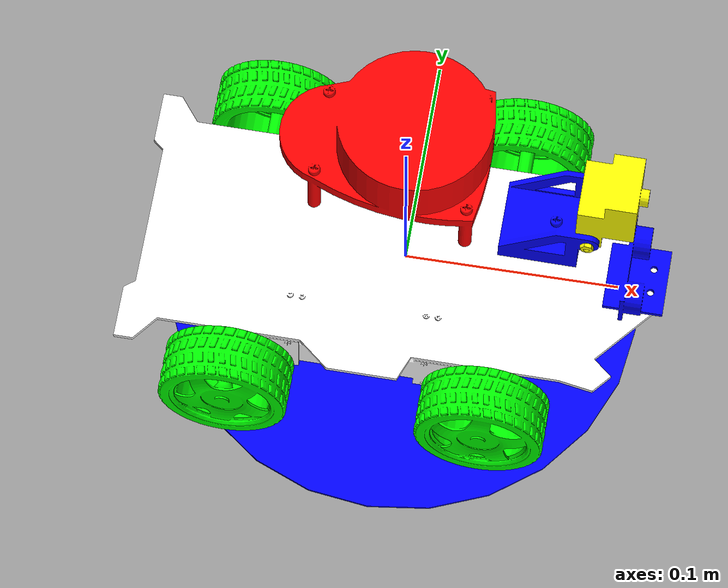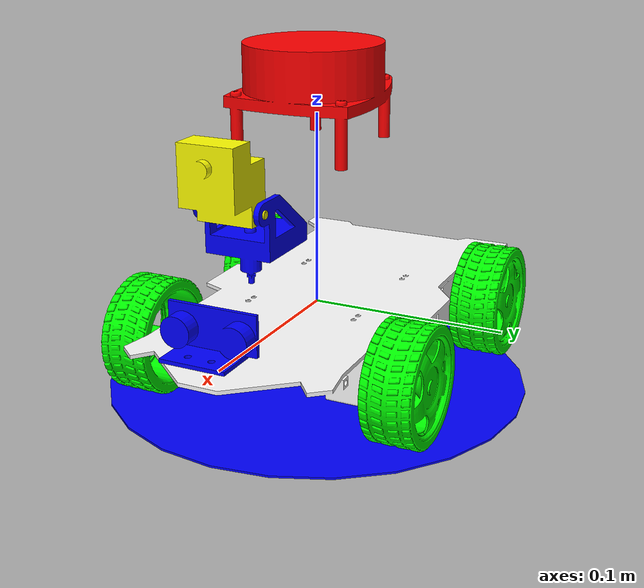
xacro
<?xml version="1.0" encoding="utf-8"?>
<robot
        xmlns:xacro="http://www.ros.org/wiki/xacro"
        name="pbot">
    <!-- Matherials -->
    <xacro:include filename="$(find pbot_description)/urdf/pbot_materials.xacro"/>
    <xacro:property name="clearance" value="0.043"/>

    <!-- base_link -->
    <link name="base_link">
        <visual>
            <origin xyz="0 0 0" rpy="0 0 0"/>
            <geometry>
                <sphere radius="0.001"/>
            </geometry>
        </visual>
        <inertial>
            <origin
                    xyz="-0.0126793836830341 4.44350410814448E-10 -0.00681296059112218"
                    rpy="0 0 0"/>
            <mass
                    value="0.28831638977324"/>
            <inertia
                    ixx="0.000131169085410887"
                    ixy="-4.3600054751417E-15"
                    ixz="9.31897878301522E-06"
                    iyy="0.000567748496773017"
                    iyz="-9.53741865535676E-15"
                    izz="0.000682526229970573"/>
        </inertial>
    </link>

    <!-- base_footprint -->
    <link name="base_footprint">
        <visual>
            <origin xyz="0 0 0" rpy="0 0 0"/>
            <geometry>
                <cylinder length="0.001" radius="0.110"/>
            </geometry>
            <material name="Blue"/>
        </visual>
    </link>

    <joint name="base_link_to_base_footprint" type="fixed">
        <origin xyz="0 0 -${clearance}" rpy="0 0 0"/>
        <parent link="base_link"/>
        <child link="base_footprint"/>
    </joint>

    <joint name="base_link_to_pbot_base" type="fixed">
        <origin xyz="0 0 0" rpy="0 0 0"/>
        <parent link="base_link"/>
        <child link="pbot_base"/>
    </joint>

    <link
            name="pbot_base">
        <inertial>
            <origin
                    xyz="-0.00021219 -0.001448 0.037164"
                    rpy="0 0 0"/>
            <mass
                    value="0.88805"/>
            <inertia
                    ixx="0.00053126"
                    ixy="-3.6522E-07"
                    ixz="1.6178E-05"
                    iyy="0.0011501"
                    iyz="-1.8024E-08"
                    izz="0.0016371"/>
        </inertial>
        <visual>
            <origin
                    xyz="0 0 0"
                    rpy="0 0 0"/>
            <geometry>
                <mesh
                        filename="package://pbot_description/meshes/pbot_base.STL"/>
            </geometry>
            <material
                    name="White">
            </material>
        </visual>
        <collision>
            <origin
                    xyz="0 0 0"
                    rpy="0 0 0"/>
            <geometry>
                <mesh
                        filename="package://pbot_description/meshes/pbot_base.STL"/>
            </geometry>
        </collision>
    </link>

    <!-- Lidar -->
    <xacro:include filename="$(find pbot_description)/urdf/pbot_lidar.xacro"/>

    <!-- Ultrasound -->
    <xacro:include filename="$(find pbot_description)/urdf/pbot_sonar.xacro"/>

    <!-- Camera -->
    <xacro:include filename="$(find pbot_description)/urdf/pbot_camera.xacro"/>

    <!-- Wheels -->
    <xacro:include filename="$(find pbot_description)/urdf/pbot_rf_w.xacro"/>
    <xacro:include filename="$(find pbot_description)/urdf/pbot_rr_w.xacro"/>
    <xacro:include filename="$(find pbot_description)/urdf/pbot_lf_w.xacro"/>
    <xacro:include filename="$(find pbot_description)/urdf/pbot_lr_w.xacro"/>

    <!-- Gazebo -->
    <xacro:include filename="$(find pbot_description)/urdf/pbot_gazebo.xacro"/>
</robot>

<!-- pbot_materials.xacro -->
<robot
    xmlns:xacro="http://www.ros.org/wiki/xacro">
    <material name="Green">
	<color rgba="0.0 1.0 0.0 1.0"/>
    </material>
    <material name="Blue">
	<color rgba="0.0 0.0 1.0 1.0"/>
    </material>
    <material name="Red">
	<color rgba="1.0 0.0 0.0 1.0"/>
    </material>
    <material name="White">
	<color rgba="1.0 1.0 1.0 1.0"/>
    </material>
    <material name="Yellow">
	<color rgba="1.0 1.0 0.0 1.0"/>
    </material>
</robot>

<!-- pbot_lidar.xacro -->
<robot
        xmlns:xacro="http://www.ros.org/wiki/xacro"
        name="pbot">
    <link
            name="laser_frame">
        <inertial>
            <origin
                    xyz="0.00208191942450915 3.97647389113363E-18 -0.00385299208880718"
                    rpy="0 0 0"/>
            <mass
                    value="0.968613348864223"/>
            <inertia
                    ixx="0.000334583006933795"
                    ixy="-5.24034614619688E-20"
                    ixz="1.81259849319653E-21"
                    iyy="0.000411095059912044"
                    iyz="-3.29708352475897E-21"
                    izz="0.000675110546906932"/>
        </inertial>
        <visual>
            <origin
                    xyz="0 0 0"
                    rpy="0 0 0"/>
            <geometry>
                <mesh
                        filename="package://pbot_description/meshes/laser_frame.STL"/>
            </geometry>
            <material name="Red"/>
        </visual>
        <collision>
            <origin
                    xyz="0 0 0"
                    rpy="0 0 0"/>
            <geometry>
                <mesh
                        filename="package://pbot_description/meshes/laser_frame.STL"/>
            </geometry>
        </collision>
    </link>
    <joint
            name="laser_joint"
            type="fixed">
        <origin
                xyz="0.0039648 0 0.12415"
                rpy="0 -0.016609 3.1416"/>
        <parent
                link="pbot_base"/>
        <child
                link="laser_frame"/>
        <axis
                xyz="0 0 0"/>
    </joint>

</robot>

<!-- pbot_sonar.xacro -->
<robot
        xmlns:xacro="http://www.ros.org/wiki/xacro"
        name="pbot">
    <link
            name="pbot_sonar">
        <inertial>
            <origin
                    xyz="0.00254491682770949 -3.66799406865457E-18 -0.00442304839537571"
                    rpy="0 0 0"/>
            <mass
                    value="0.0495110191487618"/>
            <inertia
                    ixx="1.03481074988365E-05"
                    ixy="-1.43971637317523E-21"
                    ixz="2.35878891442608E-07"
                    iyy="3.04932164399552E-06"
                    iyz="1.70839196721133E-21"
                    izz="9.79795359146923E-06"/>
        </inertial>
        <visual>
            <origin
                    xyz="0 0 0"
                    rpy="0 0 0"/>
            <geometry>
                <mesh
                        filename="package://pbot_description/meshes/pbot_sonar.STL"/>
            </geometry>
            <material name="Blue"/>
        </visual>
        <collision>
            <origin
                    xyz="0 0 0"
                    rpy="0 0 0"/>
            <geometry>
                <mesh
                        filename="package://pbot_description/meshes/pbot_sonar.STL"/>
            </geometry>
        </collision>
    </link>
    <joint
            name="sonar_to_base"
            type="fixed">
        <origin
                xyz="0.1048 0 0.023015"
                rpy="0 0.016609 0"/>
        <parent
                link="pbot_base"/>
        <child
                link="pbot_sonar"/>
        <axis
                xyz="0 0 0"/>
    </joint>
</robot>

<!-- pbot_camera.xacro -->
<robot
        xmlns:xacro="http://www.ros.org/wiki/xacro"
        name="pbot">

    <link
            name="pbot_camera_h">
        <inertial>
            <origin
                    xyz="-0.00442120427949036 1.89949483748387E-05 -0.00284622380073214"
                    rpy="0 0 0"/>
            <mass
                    value="0.107749250099924"/>
            <inertia
                    ixx="1.66906472405085E-05"
                    ixy="2.34004269563963E-09"
                    ixz="-2.00817695580187E-06"
                    iyy="1.72352983259005E-05"
                    iyz="8.62778612342202E-09"
                    izz="2.41544637259914E-05"/>
        </inertial>
        <visual>
            <origin
                    xyz="0 0 0"
                    rpy="0 0 0"/>
            <geometry>
                <mesh
                        filename="package://pbot_description/meshes/pbot_camera_h.STL"/>
            </geometry>
            <material name="Blue"/>
        </visual>
        <collision>
            <origin
                    xyz="0 0 0"
                    rpy="0 0 0"/>
            <geometry>
                <mesh
                        filename="package://pbot_description/meshes/pbot_camera_h.STL"/>
            </geometry>
        </collision>
    </link>
    <joint
            name="camera_h_to_base"
            type="continuous">
        <origin
                xyz="0.069451 8.5741E-05 0.057354"
                rpy="0 0.016609 0"/>
        <parent
                link="pbot_base"/>
        <child
                link="pbot_camera_h"/>
        <axis
                xyz="0 0 -1"/>
    </joint>
    <link
            name="pbot_camera_v">
        <inertial>
            <origin
                    xyz="0.00666977708243387 -0.0144960911947171 0.0135514367296394"
                    rpy="0 0 0"/>
            <mass
                    value="0.0237451656745337"/>
            <inertia
                    ixx="3.58294133330356E-06"
                    ixy="1.26129462744684E-09"
                    ixz="-7.07892718500619E-07"
                    iyy="3.26994433858154E-06"
                    iyz="7.33327247126989E-10"
                    izz="2.88968628542964E-06"/>
        </inertial>
        <visual>
            <origin
                    xyz="0 0 0"
                    rpy="0 0 0"/>
            <geometry>
                <mesh
                        filename="package://pbot_description/meshes/pbot_camera_v.STL"/>
            </geometry>
            <material name="Yellow"/>
        </visual>
        <collision>
            <origin
                    xyz="0 0 0"
                    rpy="0 0 0"/>
            <geometry>
                <mesh
                        filename="package://pbot_description/meshes/pbot_camera_v.STL"/>
            </geometry>
        </collision>
    </link>
    <joint
            name="camera_v_to_camera_h"
            type="continuous">
        <origin
                xyz="0.016051 0.014031 0.0145"
                rpy="0 0 -0.0042963"/>
        <parent
                link="pbot_camera_h"/>
        <child
                link="pbot_camera_v"/>
        <axis
                xyz="0 -1 0"/>
    </joint>

</robot>

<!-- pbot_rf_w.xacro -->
<robot
        xmlns:xacro="http://www.ros.org/wiki/xacro"
        name="pbot">

    <link
            name="pbot_rf_w">
        <inertial>
            <origin
                    xyz="7.0441E-11 0.00027973 4.457E-10"
                    rpy="0 0 0"/>
            <mass
                    value="0.030238"/>
            <inertia
                    ixx="1.157E-05"
                    ixy="-7.5717E-15"
                    ixz="-3.0141E-14"
                    iyy="1.9609E-05"
                    iyz="-1.0612E-13"
                    izz="1.157E-05"/>
        </inertial>
        <visual>
            <origin
                    xyz="0 0 0"
                    rpy="0 0 0"/>
            <geometry>
                <mesh
                        filename="package://pbot_description/meshes/pbot_rf_w.STL"/>
            </geometry>
            <material name="Green"/>
        </visual>
        <collision>
            <origin
                    xyz="0 0 0"
                    rpy="0 0 0"/>
            <geometry>
                <mesh
                        filename="package://pbot_description/meshes/pbot_rf_w.STL"/>
            </geometry>
        </collision>
    </link>
    <joint
            name="pbot_rf_w_to_base"
            type="continuous">
        <origin
                xyz="0.047088 -0.0705 -0.013284"
                rpy="0 0.016609 0"/>
        <parent
                link="pbot_base"/>
        <child
                link="pbot_rf_w"/>
        <axis
                xyz="0 1 0"/>
    </joint>
</robot>

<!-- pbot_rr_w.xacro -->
<robot
        xmlns:xacro="http://www.ros.org/wiki/xacro"
        name="pbot">

    <link
            name="pbot_rr_w">
        <inertial>
            <origin
                    xyz="5.38798672344853E-10 0.00027973133311894 5.4071500402153E-10"
                    rpy="0 0 0"/>
            <mass
                    value="0.0302375580628956"/>
            <inertia
                    ixx="1.15702196703268E-05"
                    ixy="-1.34449266129171E-13"
                    ixz="-3.64897808319972E-14"
                    iyy="1.96090960765893E-05"
                    iyz="-1.23593693591465E-13"
                    izz="1.1570219796082E-05"/>
        </inertial>
        <visual>
            <origin
                    xyz="0 0 0"
                    rpy="0 0 0"/>
            <geometry>
                <mesh
                        filename="package://pbot_description/meshes/pbot_rr_w.STL"/>
            </geometry>
            <material name="Green"/>
        </visual>
        <collision>
            <origin
                    xyz="0 0 0"
                    rpy="0 0 0"/>
            <geometry>
                <mesh
                        filename="package://pbot_description/meshes/pbot_rr_w.STL"/>
            </geometry>
        </collision>
    </link>
    <joint
            name="pbot_rr_w_to_base"
            type="continuous">
        <origin
                xyz="-0.0728953319370115 -0.0705 -0.0112908611194895"
                rpy="0 0.0166094578206924 0"/>
        <parent
                link="pbot_base"/>
        <child
                link="pbot_rr_w"/>
        <axis
                xyz="0 1 0"/>
    </joint>

</robot>

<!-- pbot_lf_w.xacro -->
<robot
        xmlns:xacro="http://www.ros.org/wiki/xacro"
        name="pbot">
    <link
            name="pbot_lf_w">
        <inertial>
            <origin
                    xyz="2.20207470313927E-10 -0.000279731201700426 -2.0205375914073E-10"
                    rpy="0 0 0"/>
            <mass
                    value="0.0302375576064607"/>
            <inertia
                    ixx="1.15702197035643E-05"
                    ixy="5.87881486177672E-14"
                    ixz="1.10485738589503E-14"
                    iyy="1.96090957656786E-05"
                    iyz="-6.70315528384273E-14"
                    izz="1.15702193827656E-05"/>
        </inertial>
        <visual>
            <origin
                    xyz="0 0 0"
                    rpy="0 0 0"/>
            <geometry>
                <mesh
                        filename="package://pbot_description/meshes/pbot_lf_w.STL"/>
            </geometry>
            <material name="Green"/>
        </visual>
        <collision>
            <origin
                    xyz="0 0 0"
                    rpy="0 0 0"/>
            <geometry>
                <mesh
                        filename="package://pbot_description/meshes/pbot_lf_w.STL"/>
            </geometry>
        </collision>
    </link>
    <joint
            name="pbot_lf_w_to_base"
            type="continuous">
        <origin
                xyz="0.0470881159981717 0.0705 -0.0132839044168557"
                rpy="0 0.0166094578206922 0"/>
        <parent
                link="pbot_base"/>
        <child
                link="pbot_lf_w"/>
        <axis
                xyz="0 -1 0"/>
    </joint>

</robot>

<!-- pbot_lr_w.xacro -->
<robot
        xmlns:xacro="http://www.ros.org/wiki/xacro"
        name="pbot">

    <link
            name="pbot_lr_w">
        <inertial>
            <origin
                    xyz="3.29489630024327E-11 -0.0002797313481048 -1.85563862886706E-10"
                    rpy="0 0 0"/>
            <mass
                    value="0.0302375580133055"/>
            <inertia
                    ixx="1.15702196840428E-05"
                    ixy="-2.03000444280046E-14"
                    ixz="1.06746865771734E-13"
                    iyy="1.96090960377303E-05"
                    iyz="-5.58321097468027E-14"
                    izz="1.15702197584359E-05"/>
        </inertial>
        <visual>
            <origin
                    xyz="0 0 0"
                    rpy="0 0 0"/>
            <geometry>
                <mesh
                        filename="package://pbot_description/meshes/pbot_lr_w.STL"/>
            </geometry>
            <material name="Green"/>
        </visual>
        <collision>
            <origin
                    xyz="0 0 0"
                    rpy="0 0 0"/>
            <geometry>
                <mesh
                        filename="package://pbot_description/meshes/pbot_lr_w.STL"/>
            </geometry>
        </collision>
    </link>
    <joint
            name="pbot_lr_w_to_base"
            type="continuous">
        <origin
                xyz="-0.0728953319370116 0.0705 -0.0112908611194895"
                rpy="0 0.0166094578206921 0"/>
        <parent
                link="pbot_base"/>
        <child
                link="pbot_lr_w"/>
        <axis
                xyz="0 -1 0"/>
    </joint>

</robot>
